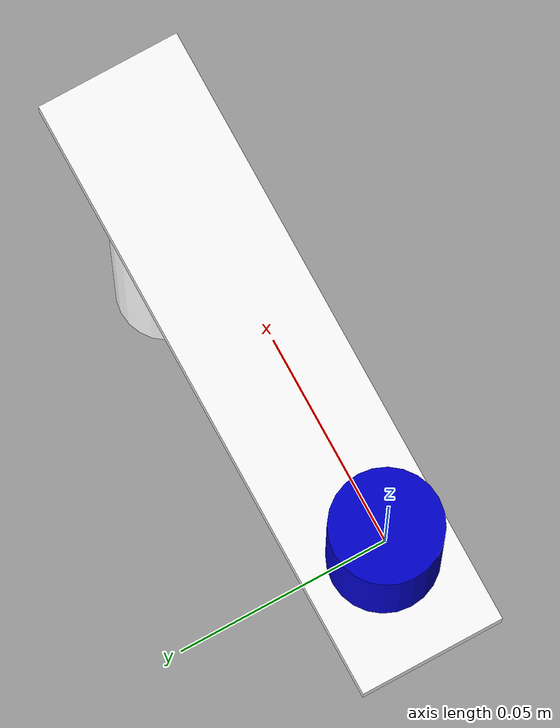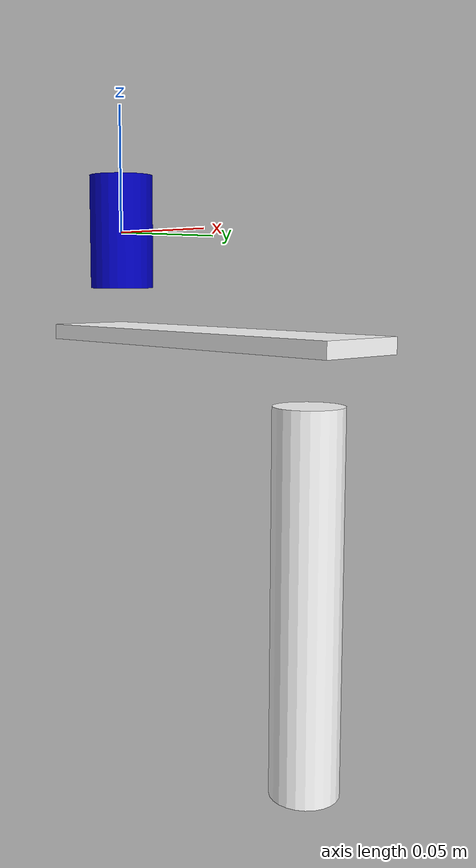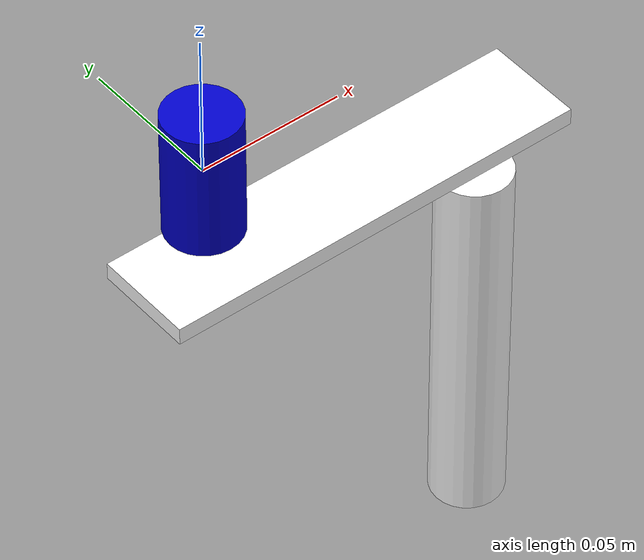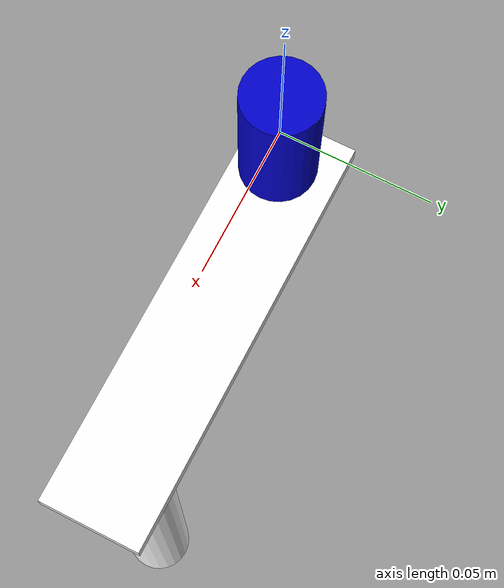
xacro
<?xml version="1.0"?>
<robot xmlns:xacro="http://www.ros.org/wiki/xacro" name="one_leg">
  <!-- ############################################
       include other xacro files
       ############################################ -->
  <xacro:include filename="$(cwd)/urdf/colors.xacro" />
  <xacro:include filename="$(cwd)/urdf/macros.xacro" />

  <!-- ############################################
       calling macro
       ############################################ -->
  <link name="base_link">
     <visual>
      <geometry>
        <box size="0.001 0.001 0.001"/>
      </geometry>
      <origin rpy="0 0 0" xyz="0 0 0.0"/>
      <material name="white"/>
    </visual>
  </link>

  <xacro:leg prefix="only"></xacro:leg>

  <joint name="hip_joint" type="fixed">
    <parent link="base_link"/>
    <child link="only_hip_link"/>
    <origin xyz="0 0 0"/>
  </joint>

</robot>

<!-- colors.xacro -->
<robot xmlns:xacro="http://www.ros.org/wiki/xacro" name="colors">
  <!-- ############################################
       Colors
       ############################################ -->
  <material name="blue">
    <color rgba="0 0 0.8 1"/>
  </material>
  <material name="black">
    <color rgba="0 0 0 1"/>
  </material>
  <material name="white">
    <color rgba="1 1 1 1"/>
  </material>
</robot>

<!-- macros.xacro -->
<robot xmlns:xacro="http://www.ros.org/wiki/xacro" name="macros">
<!-- ############################################
       Macro - servo
     ############################################ -->

  <xacro:property name="servowidth"      value="0.04" />
  <xacro:property name="servolen"        value="0.04" />
  <xacro:property name="servothick"      value="0.02" />
  <xacro:property name="servo_velocity"  value="0.5" />
  <xacro:property name="servo_effort"    value="1000.0" />

  <xacro:macro name="servo" params="suffix">
    <link name="servo_${suffix}_link">
    <visual>
      <geometry>
        <box size="${servolen} ${servowidth} ${servothick}"/>
      </geometry>
      <origin rpy="0 0 0" xyz="0 0 0.0"/>
      <material name="black"/>
    </visual>
    <collision>
      <geometry>
        <box size="${servolen} ${servowidth} ${servothick}"/>
      </geometry>
      <origin rpy="0 0 0" xyz="0 0 0.0"/>
    </collision>
    </link>
  </xacro:macro>

  <!-- ############################################
       Parameters - for leg
       ############################################ -->
  <xacro:property name="pi"               value="3.14159265359" />
  <xacro:property name="hip_length"       value="0.045" />
  <xacro:property name="hip_radius"       value="0.0127" />
  <xacro:property name="hip_mass"         value="0.03" />
  <xacro:property name="thigh_length"     value="0.15" />
  <xacro:property name="thigh_width"      value="0.035" />
  <xacro:property name="thigh_thickness"  value="0.006" />
  <xacro:property name="thigh_mass"       value="0.03" />
  <xacro:property name="x_offset_hip_to_thigh" value="0.023" />
  <xacro:property name="servo_velocity"  value="0.5" />
  <xacro:property name="servo_effort"    value="1000.0" />
  <xacro:property name="gap_hip_to_thigh" value="0.015" />
  <xacro:property name="min_angle_thigh_joint" value="-0.5" />
  <xacro:property name="max_angle_thigh_joint" value="${pi/2}" />
  <xacro:property name="leg_length"       value="0.14" />
  <xacro:property name="leg_radius"       value="0.0127" />
  <xacro:property name="leg_mass"         value="0.03" />
  <xacro:property name="x_offset_thigh_to_leg" value="0.023" />
  <xacro:property name="gap_thigh_to_leg" value="0.015" />
  <xacro:property name="min_angle_leg_joint" value="-${pi/2}" />
  <xacro:property name="max_angle_leg_joint" value="${pi/2}" />
  <!-- ############################################
       Macro - leg
       ############################################ -->

  <xacro:macro name="leg" params="prefix">
    <link name="${prefix}_hip_link">
      <visual>
        <geometry>
          <cylinder length="${hip_length}" radius="${hip_radius}"/>
        </geometry>
        <origin rpy="0 0 0" xyz="0 0 0.0"/>
        <material name="blue"/>
      </visual>
      <collision>
        <geometry>
          <cylinder length="${hip_length}" radius="${hip_radius}"/>
        </geometry>
        <origin rpy="0 0 0" xyz="0 0 0.0"/>
      </collision>
      <inertial>
        <mass value="${hip_mass}"/>
        <inertia ixx="0.4" ixy="0.0" ixz="0.0" iyy="0.4" iyz="0.0" izz="0.2"/>
      </inertial>
    </link>

    <link name="${prefix}_thigh_link">
      <visual>
        <geometry>
          <box size="${thigh_length} ${thigh_width} ${thigh_thickness}"/>
        </geometry>
        <material name="white"/>
        <origin rpy="0 0 0" xyz="${thigh_length/2-x_offset_hip_to_thigh} 0 -${gap_hip_to_thigh}"/>
      </visual>
      <collision>
        <geometry>
          <box size="${thigh_length} ${thigh_width} ${thigh_thickness}"/>
        </geometry>
        <material name="white"/>
        <origin rpy="0 0 0" xyz="${thigh_length/2-x_offset_hip_to_thigh} 0 -${gap_hip_to_thigh}"/>
      </collision>
      <inertial>
        <mass value="${thigh_mass}"/>
        <inertia ixx="0.4" ixy="0.0" ixz="0.0" iyy="0.4" iyz="0.0" izz="0.2"/>
      </inertial>
    </link>
    <joint name="${prefix}_hip_to_thigh" type="revolute">
      <parent link="${prefix}_hip_link"/>
      <child link="${prefix}_thigh_link"/>
      <origin xyz="0 0 -${hip_length/2+thigh_thickness/2}"/>
      <axis xyz="0 1 0"/>
      <limit effort="${servo_effort}" lower="${min_angle_thigh_joint}" upper="${max_angle_thigh_joint}" velocity="${servo_velocity}"/>
    </joint>
      <link name="${prefix}_leg_link">
      <visual>
        <geometry>
          <cylinder length="${leg_length}" radius="${leg_radius}"/>
        </geometry>
        <material name="white"/>
        <origin rpy="0 0 0" xyz="0 0 -${leg_length/2}"/>
      </visual>
      <collision>
        <geometry>
          <cylinder length="${leg_length}" radius="${leg_radius}"/>
        </geometry>
        <origin rpy="0 0 0" xyz="0 0 -${leg_length/2}"/>
      </collision>
      <inertial>
        <mass value="${leg_mass}"/>
        <inertia ixx="0.4" ixy="0.0" ixz="0.0" iyy="0.4" iyz="0.0" izz="0.2"/>
      </inertial>
    </link>

    <joint name="${prefix}_thigh_to_leg" type="revolute">
      <parent link="${prefix}_thigh_link"/>
      <child link="${prefix}_leg_link"/>
      <origin xyz="${thigh_length-x_offset_hip_to_thigh-x_offset_thigh_to_leg} 0 -${gap_hip_to_thigh+thigh_thickness+gap_thigh_to_leg}"/>
      <axis xyz="0 1 0"/>
      <limit effort="${servo_effort}" lower="${min_angle_leg_joint}" upper="${max_angle_leg_joint}" velocity="${servo_velocity}"/>
    </joint>
  </xacro:macro>
</robot>
